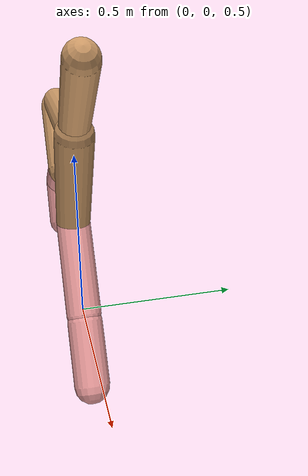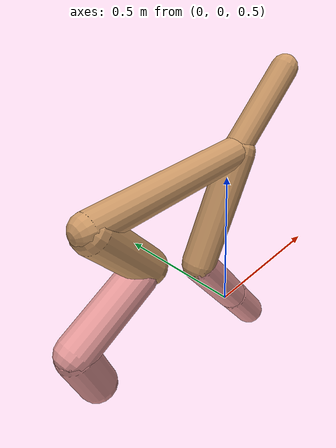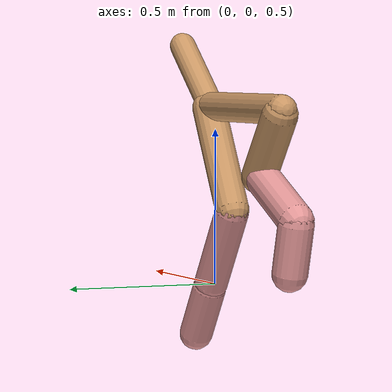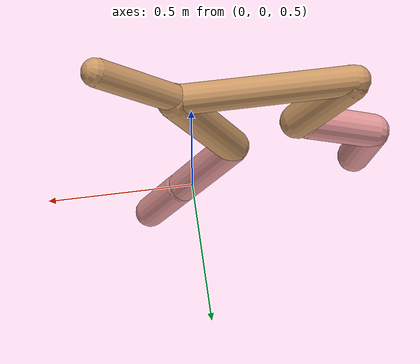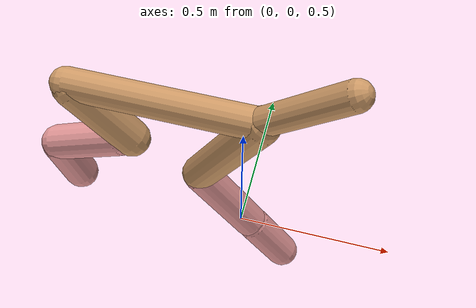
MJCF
<mujoco model="cheetah">
  <compiler angle="radian" coordinate="local" inertiafromgeom="true" settotalmass="14" />
  <default>
    <joint armature=".1" damping=".01" limited="true" solimplimit="0 .8 .03" solreflimit=".02 1" stiffness="8" />
    <geom conaffinity="0" condim="3" contype="1" friction="0.8 .1 .1" rgba="0.8 0.6 .4 1" solimp="0.0 0.8 0.01" solref="0.02 1" />
    <motor ctrllimited="true" ctrlrange="-1 1" />
  </default>
  <size nstack="300000" nuser_geom="1" />
  <option gravity="0 0 -9.81" timestep="0.01" />
  <worldbody>
    <body name="torso" pos="0.0 0.0 1.073630904269438">
      <joint armature="0" axis="1 0 0" damping="0" limited="false" name="ignorex" pos="0 0 0" stiffness="0" type="slide" />
      <joint armature="0" axis="0 0 1" damping="0" limited="false" name="ignorez" pos="0 0 0" stiffness="0" type="slide" />
      <joint armature="0" axis="0 1 0" damping="0" limited="false" name="ignorey" pos="0 0 0" stiffness="0" type="hinge" />
      <geom fromto="-0.5 0.0 0.0 0.05354270968433533 0.0 0.0" name="torso" size="0.046807816384746986" type="capsule" />
      <geom axisangle="0 1 0 .87" name="head" pos="0.15354270968433525 0.0 0.1" size="0.04242849233344994 0.15" type="capsule" />

      <body name="bthigh" pos="-.5 0 0">
        <joint axis="0 1 0" damping="6" name="bthigh" pos="0 0 0" range="-.52 1.05" stiffness="240" type="hinge" />
        <geom axisangle="0 1 0 -3.8" name="bthigh" pos="0.086424410745447 0.0 -0.1123517339690811" size="0.05585455118672363 0.12273437812441743" type="capsule" />
        <body name="bshin" pos="0.132848821490894 0.0 -0.2147034679381622">
          <joint axis="0 1 0" damping="4.5" name="bshin" pos="0 0 0" range="-.785 .785" stiffness="180" type="hinge" />
          <geom axisangle="0 1 0 -2.03" name="bshin" pos="-0.1193982990034032 0.0 -0.0596991495017016" rgba="0.9 0.6 0.6 1" size="0.05585455118672363 0.12696659805974217" type="capsule" />
          <body name="bfoot" pos="-0.2387965980068064 0.0 -0.1193982990034032">
            <joint axis="0 1 0" damping="3" name="bfoot" pos="0 0 0" range="-.4 .785" stiffness="120" type="hinge" />
            <geom axisangle="0 1 0 -.27" name="bfoot" pos="0.025735111656075893 0.0 -0.0832101943546454" rgba="0.9 0.6 0.6 1" size="0.05585455118672363 0.0795657347841051" type="capsule" />
            <inertial mass="10" />
          </body>
        </body>
      </body>
      <body name="fthigh" pos="0.05354270968433528 0.0 0.0">
        <joint axis="0 1 0" damping="4.5" name="fthigh" pos="0 0 0" range="-1.5 0.8" stiffness="180" type="hinge" />
        <geom axisangle="0 1 0 .52" name="fthigh" pos="-0.09619123185976 0.0 -0.16489925461673138" size="0.05448377518483415 0.18498003166091556" type="capsule" />
        <body name="fshin" pos="-0.19238246371952 0.0 -0.32979850923346277">
          <joint axis="0 1 0" damping="3" name="fshin" pos="0 0 0" range="-1.2 1.1" stiffness="120" type="hinge" />
          <geom axisangle="0 1 0 -.6" name="fshin" pos="0.08925552374252371 0.0 -0.12358457133580206" rgba="0.9 0.6 0.6 1" size="0.05448377518483415 0.14742769440644396" type="capsule" />
          <body name="ffoot" pos="0.17851104748504742 0.0 -0.24716914267160411">
            <joint axis="0 1 0" damping="1.5" name="ffoot" pos="0 0 0" range="-3.1 -0.3" stiffness="60" type="hinge" />
            <geom axisangle="0 1 0 -.6" name="ffoot" pos="0.059793998272292675 0.0 -0.09301288620134418" rgba="0.9 0.6 0.6 1" size="0.05448377518483415 0.09735791140048188" type="capsule" />
            <inertial mass="10" />
          </body>
        </body>
      </body>
    </body>
  </worldbody>
  <actuator>
    <motor gear="120" joint="bthigh" name="bthigh" />
    <motor gear="90" joint="bshin" name="bshin" />
    <motor gear="60" joint="bfoot" name="bfoot" />
    <motor gear="120" joint="fthigh" name="fthigh" />
    <motor gear="60" joint="fshin" name="fshin" />
    <motor gear="30" joint="ffoot" name="ffoot" />
  </actuator>
</mujoco>
